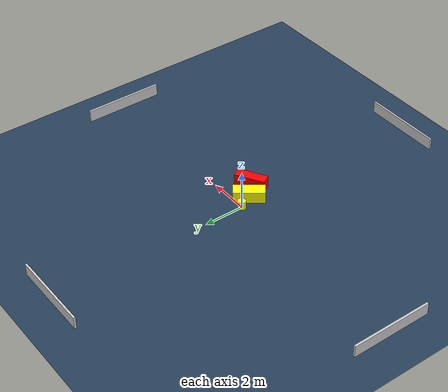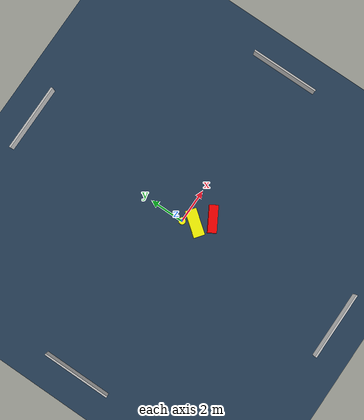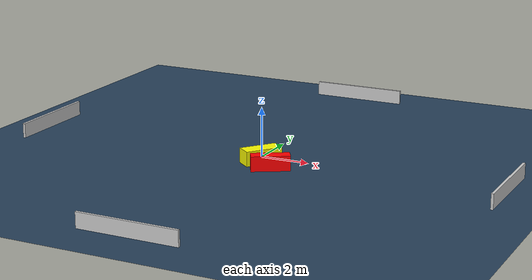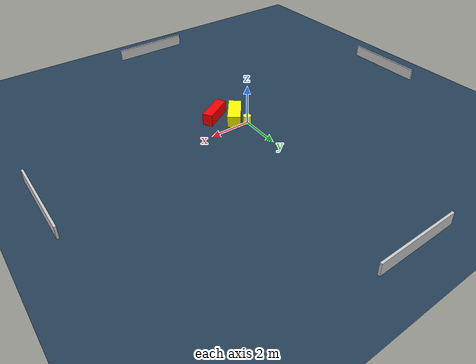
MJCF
<?xml version="1.0" ?>
<mujoco model="generated_environment">
  <option timestep="0.01" integrator="RK4" cone="elliptic"/>
  <default>
    <geom density="1"/>
  </default>
  <asset>
    <texture builtin="gradient" height="3072" name="skybox" rgb1="0.3 0.5 0.7" rgb2="0 0 0" type="skybox" width="512"/>
    <texture builtin="checker" height="300" name="groundplane" rgb1="0.2 0.3 0.4" rgb2="0.1 0.2 0.3" type="2d" width="300"/>
    <material name="groundplane" reflectance="0.2" texrepeat="5 5" texture="groundplane"/>
  </asset>
  <worldbody>
    <light dir="0 0 -1" directional="true" pos="0 0 1.5"/>
    <geom condim="3" friction="0.5 0.005 0.001" material="groundplane" name="floor" pos="0 0 0" size="0 0 0.05" type="plane"/>
    <body name="walls">
      <geom name="wall_1" condim="4" pos="-10.0 0.0 0.3" rgba="0.800000011920929 0.800000011920929 0.800000011920929 1.0" size="0.05 2.0 0.3" type="box"/>
      <geom name="wall_2" condim="4" pos="10.0 0.0 0.3" rgba="0.800000011920929 0.800000011920929 0.800000011920929 1.0" size="0.05 2.0 0.3" type="box"/>
      <geom name="wall_3" condim="4" pos="0.0 -10.0 0.3" rgba="0.800000011920929 0.800000011920929 0.800000011920929 1.0" size="2.0 0.05 0.3" type="box"/>
      <geom name="wall_4" condim="4" pos="0.0 10.0 0.3" rgba="0.800000011920929 0.800000011920929 0.800000011920929 1.0" size="2.0 0.05 0.3" type="box"/>
    </body>
    <body name="robot">
      <joint name="joint_x" type="slide" pos="0 0 0" axis="1 0 0"/>
      <joint name="joint_y" type="slide" pos="0 0 0" axis="0 1 0"/>
      <geom name="robot" type="cylinder" pos="0.0 0.0 0.2" size="0.2 0.2 0.0" mass="5.0" friction="1.0 0.005 0.0001" condim="4" rgba="1.0 1.0 0.0 1.0"/>
    </body>
    <body name="obstacle_1_movable">
      <geom name="obstacle_1_movable" condim="4" pos="0.2916188762513832 -0.6435264338026505 0.3" euler="0 0 232.34609309013447" friction="0.0 0.005 0.001" rgba="1.0 1.0 0.0 1.0" size="0.766251032033358 0.3178170330154394 0.3" type="box" mass="0.1"/>
      <joint type="free"/>
    </body>
    <body name="obstacle_2_static">
      <geom name="obstacle_2_static" condim="4" pos="1.0252318830368226 -1.3226596319519368 0.3" euler="0 0 30.082031567277863" friction="0.0 0.005 0.001" rgba="1.0 0.0 0.0 1.0" size="0.7633303791138215 0.2542728268656572 0.3" type="box"/>
    </body>
  </worldbody>
  <actuator>
    <motor name="actuator_x" joint="joint_x" gear="1" ctrlrange="-1 1"/>
    <motor name="actuator_y" joint="joint_y" gear="1" ctrlrange="-1 1"/>
  </actuator>
</mujoco>
